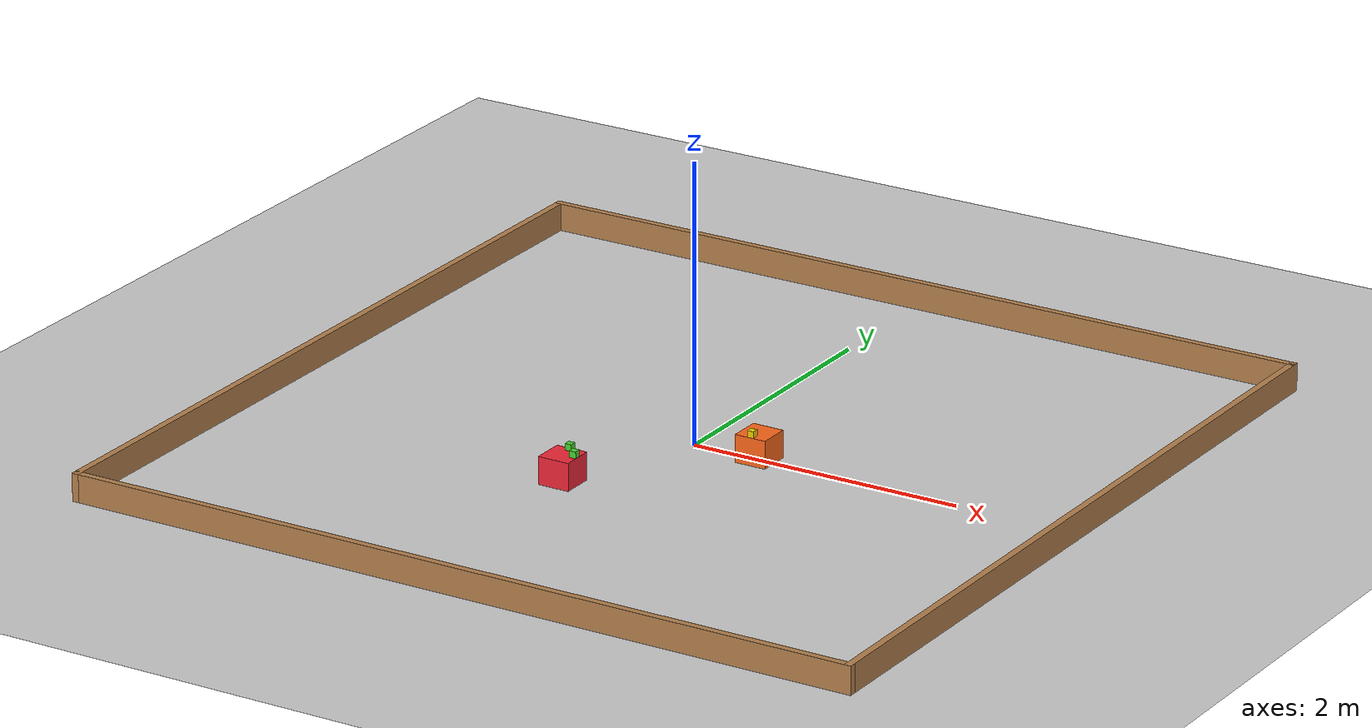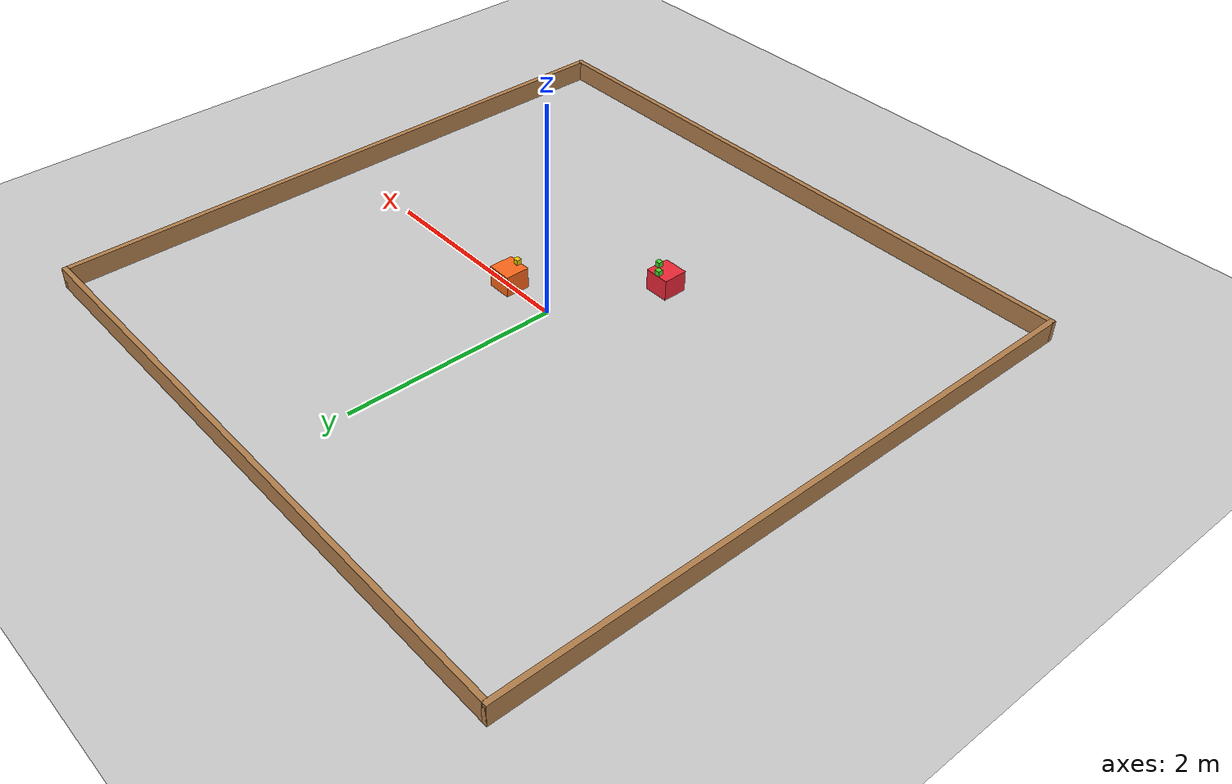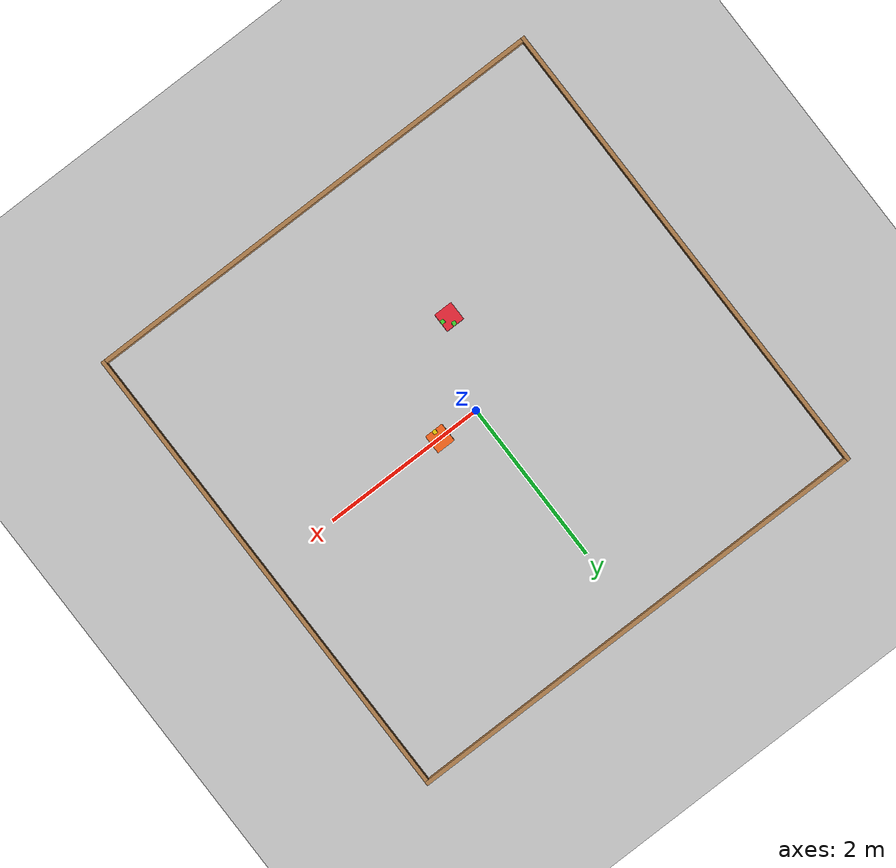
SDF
<sdf version="1.5">
 <world name="default">
  <model name="ground_plane">
   <static>1</static>
   <link name="link">
    <collision name="collision">
     <geometry><plane><normal>0 0 1</normal><size>100 100</size></plane></geometry>
     <surface><friction><ode><mu>100</mu><mu2>50</mu2></ode></friction></surface>
    </collision>
    <visual name="visual">
     <cast_shadows>0</cast_shadows>
     <geometry><plane><normal>0 0 1</normal><size>100 100</size></plane></geometry>
     <material>
      <script><uri>file://media/materials/scripts/gazebo.material</uri><name>Gazebo/Grey</name></script>
     </material>
    </visual>
   </link>
  </model>
  <model name="wroWall"><static>0</static><pose>0.068926 -0.102319 0 0 -0 0</pose></model>
  <model name="red_climate">
   <link name="link_0">
    <inertial>
     <mass>3</mass>
     <inertia>
      <ixx>0.166667</ixx>
      <ixy>0</ixy>
      <ixz>0</ixz>
      <iyy>0.166667</iyy>
      <iyz>0</iyz>
      <izz>0.166667</izz>
     </inertia>
    </inertial>
    <visual name="visual">
     <geometry><box><size>0.23 0.23 0.2</size></box></geometry>
     <material>
      <lighting>1</lighting>
      <script><uri>file://media/materials/scripts/gazebo.material</uri><name>Gazebo/Grey</name></script>
      <ambient>0.933 0.153 0.216 1</ambient>
      <diffuse>0.933 0.153 0.216 1</diffuse>
      <specular>0.933 0.153 0.216 1</specular>
      <emissive>0 0 0 1</emissive>
      <shader type="vertex"><normal_map>__default__</normal_map></shader>
     </material>
    </visual>
    <collision name="collision">
     <geometry><box><size>0.23 0.23 0.2</size></box></geometry>
     <surface>
      <friction>
       <ode><mu>1</mu><mu2>1</mu2><fdir1>0 0 0</fdir1><slip1>0</slip1><slip2>0</slip2></ode>
       <torsional>
        <coefficient>1</coefficient>
        <patch_radius>0</patch_radius>
        <surface_radius>0</surface_radius>
        <use_patch_radius>1</use_patch_radius>
        <ode><slip>0</slip></ode>
       </torsional>
      </friction>
      <bounce><restitution_coefficient>0.3</restitution_coefficient><threshold>1e+06</threshold></bounce>
      <contact>
       <collide_without_contact>0</collide_without_contact>
       <collide_without_contact_bitmask>1</collide_without_contact_bitmask>
       <collide_bitmask>1</collide_bitmask>
       <ode>
        <soft_cfm>0</soft_cfm>
        <soft_erp>0.2</soft_erp>
        <kp>1e+13</kp>
        <kd>1</kd>
        <max_vel>0.01</max_vel>
        <min_depth>0</min_depth>
       </ode>
       <bullet>
        <split_impulse>1</split_impulse>
        <split_impulse_penetration_threshold>-0.01</split_impulse_penetration_threshold>
        <soft_cfm>0</soft_cfm>
        <soft_erp>0.2</soft_erp>
        <kp>1e+13</kp>
        <kd>1</kd>
       </bullet>
      </contact>
     </surface>
    </collision>
   </link>
   <static>0</static>
   <pose>-0.4 -1 0.1 0 -0 4e-06</pose>
  </model>
  <model name="orange_climate">
   <link name="link_0">
    <inertial>
     <mass>3</mass>
     <inertia>
      <ixx>0.166667</ixx>
      <ixy>0</ixy>
      <ixz>0</ixz>
      <iyy>0.166667</iyy>
      <iyz>0</iyz>
      <izz>0.166667</izz>
     </inertia>
    </inertial>
    <visual name="visual">
     <geometry><box><size>0.23 0.23 0.2</size></box></geometry>
     <material>
      <lighting>1</lighting>
      <script><uri>file://media/materials/scripts/gazebo.material</uri><name>Gazebo/Grey</name></script>
      <ambient>0.99 0.4 0.1 1</ambient>
      <diffuse>0.99 0.4 0.1 1</diffuse>
      <specular>0.99 0.4 0.1 1</specular>
      <emissive>0 0 0 1</emissive>
      <shader type="vertex"><normal_map>__default__</normal_map></shader>
     </material>
    </visual>
    <collision name="collision">
     <geometry><box><size>0.23 0.23 0.2</size></box></geometry>
     <surface>
      <friction>
       <ode><mu>1</mu><mu2>1</mu2><fdir1>0 0 0</fdir1><slip1>0</slip1><slip2>0</slip2></ode>
       <torsional>
        <coefficient>1</coefficient>
        <patch_radius>0</patch_radius>
        <surface_radius>0</surface_radius>
        <use_patch_radius>1</use_patch_radius>
        <ode><slip>0</slip></ode>
       </torsional>
      </friction>
      <bounce><restitution_coefficient>0.3</restitution_coefficient><threshold>1e+06</threshold></bounce>
      <contact>
       <collide_without_contact>0</collide_without_contact>
       <collide_without_contact_bitmask>1</collide_without_contact_bitmask>
       <collide_bitmask>1</collide_bitmask>
       <ode>
        <soft_cfm>0</soft_cfm>
        <soft_erp>0.2</soft_erp>
        <kp>1e+13</kp>
        <kd>1</kd>
        <max_vel>0.01</max_vel>
        <min_depth>0</min_depth>
       </ode>
       <bullet>
        <split_impulse>1</split_impulse>
        <split_impulse_penetration_threshold>-0.01</split_impulse_penetration_threshold>
        <soft_cfm>0</soft_cfm>
        <soft_erp>0.2</soft_erp>
        <kp>1e+13</kp>
        <kd>1</kd>
       </bullet>
      </contact>
     </surface>
    </collision>
   </link>
   <static>0</static>
   <pose>0.499997 1e-06 0.1 0 -0 1e-06</pose>
  </model>
  <model name="yellow_plant_2">
   <link name="link_0">
    <inertial>
     <mass>0.03</mass>
     <inertia>
      <ixx>0.166667</ixx>
      <ixy>0</ixy>
      <ixz>0</ixz>
      <iyy>0.166667</iyy>
      <iyz>0</iyz>
      <izz>0.166667</izz>
     </inertia>
    </inertial>
    <visual name="visual">
     <geometry><box><size>0.048 0.048 0.048</size></box></geometry>
     <material>
      <lighting>1</lighting>
      <script><uri>file://media/materials/scripts/gazebo.material</uri><name>Gazebo/Grey</name></script>
      <ambient>0.95 0.8 0 1</ambient>
      <diffuse>0.95 0.8 0 1</diffuse>
      <specular>0.95 0.8 0 1</specular>
      <emissive>0 0 0 1</emissive>
      <shader type="vertex"><normal_map>__default__</normal_map></shader>
     </material>
    </visual>
    <collision name="collision">
     <geometry><box><size>0.048 0.048 0.048</size></box></geometry>
     <surface>
      <friction>
       <ode><mu>1</mu><mu2>1</mu2><fdir1>0 0 0</fdir1><slip1>0</slip1><slip2>0</slip2></ode>
       <torsional>
        <coefficient>1</coefficient>
        <patch_radius>0</patch_radius>
        <surface_radius>0</surface_radius>
        <use_patch_radius>1</use_patch_radius>
        <ode><slip>0</slip></ode>
       </torsional>
      </friction>
      <bounce><restitution_coefficient>0.3</restitution_coefficient><threshold>1e+06</threshold></bounce>
      <contact>
       <collide_without_contact>0</collide_without_contact>
       <collide_without_contact_bitmask>1</collide_without_contact_bitmask>
       <collide_bitmask>1</collide_bitmask>
       <ode>
        <soft_cfm>0</soft_cfm>
        <soft_erp>0.2</soft_erp>
        <kp>1e+13</kp>
        <kd>1</kd>
        <max_vel>0.01</max_vel>
        <min_depth>0</min_depth>
       </ode>
       <bullet>
        <split_impulse>1</split_impulse>
        <split_impulse_penetration_threshold>-0.01</split_impulse_penetration_threshold>
        <soft_cfm>0</soft_cfm>
        <soft_erp>0.2</soft_erp>
        <kp>1e+13</kp>
        <kd>1</kd>
       </bullet>
      </contact>
     </surface>
    </collision>
   </link>
   <static>0</static>
   <pose>0.499936 -0.090742 0.224001 -2e-05 -1.2e-05 -0.001613</pose>
  </model>
  <model name="green_plant_0">
   <link name="link_0">
    <inertial>
     <mass>0.03</mass>
     <inertia>
      <ixx>0.166667</ixx>
      <ixy>0</ixy>
      <ixz>0</ixz>
      <iyy>0.166667</iyy>
      <iyz>0</iyz>
      <izz>0.166667</izz>
     </inertia>
    </inertial>
    <visual name="visual">
     <geometry><box><size>0.048 0.048 0.048</size></box></geometry>
     <material>
      <lighting>1</lighting>
      <script><uri>file://media/materials/scripts/gazebo.material</uri><name>Gazebo/Grey</name></script>
      <ambient>0.266 0.84 0.172 1</ambient>
      <diffuse>0.266 0.84 0.172 1</diffuse>
      <specular>0.266 0.84 0.172 1</specular>
      <emissive>0 0 0 1</emissive>
      <shader type="vertex"><normal_map>__default__</normal_map></shader>
     </material>
    </visual>
    <collision name="collision">
     <geometry><box><size>0.048 0.048 0.048</size></box></geometry>
     <surface>
      <friction>
       <ode><mu>1</mu><mu2>1</mu2><fdir1>0 0 0</fdir1><slip1>0</slip1><slip2>0</slip2></ode>
       <torsional>
        <coefficient>1</coefficient>
        <patch_radius>0</patch_radius>
        <surface_radius>0</surface_radius>
        <use_patch_radius>1</use_patch_radius>
        <ode><slip>0</slip></ode>
       </torsional>
      </friction>
      <bounce><restitution_coefficient>0.3</restitution_coefficient><threshold>1e+06</threshold></bounce>
      <contact>
       <collide_without_contact>0</collide_without_contact>
       <collide_without_contact_bitmask>1</collide_without_contact_bitmask>
       <collide_bitmask>1</collide_bitmask>
       <ode>
        <soft_cfm>0</soft_cfm>
        <soft_erp>0.2</soft_erp>
        <kp>1e+13</kp>
        <kd>1</kd>
        <max_vel>0.01</max_vel>
        <min_depth>0</min_depth>
       </ode>
       <bullet>
        <split_impulse>1</split_impulse>
        <split_impulse_penetration_threshold>-0.01</split_impulse_penetration_threshold>
        <soft_cfm>0</soft_cfm>
        <soft_erp>0.2</soft_erp>
        <kp>1e+13</kp>
        <kd>1</kd>
       </bullet>
      </contact>
     </surface>
    </collision>
   </link>
   <static>0</static>
   <pose>-0.30918 -0.999893 0.224009 -0.000188 -0.000167 -0.000959</pose>
  </model>
  <model name="green_plant_1">
   <link name="link_0">
    <inertial>
     <mass>0.03</mass>
     <inertia>
      <ixx>0.166667</ixx>
      <ixy>0</ixy>
      <ixz>0</ixz>
      <iyy>0.166667</iyy>
      <iyz>0</iyz>
      <izz>0.166667</izz>
     </inertia>
    </inertial>
    <visual name="visual">
     <geometry><box><size>0.048 0.048 0.048</size></box></geometry>
     <material>
      <lighting>1</lighting>
      <script><uri>file://media/materials/scripts/gazebo.material</uri><name>Gazebo/Grey</name></script>
      <ambient>0.266 0.84 0.172 1</ambient>
      <diffuse>0.266 0.84 0.172 1</diffuse>
      <specular>0.266 0.84 0.172 1</specular>
      <emissive>0 0 0 1</emissive>
      <shader type="vertex"><normal_map>__default__</normal_map></shader>
     </material>
    </visual>
    <collision name="collision">
     <geometry><box><size>0.048 0.048 0.048</size></box></geometry>
     <surface>
      <friction>
       <ode><mu>1</mu><mu2>1</mu2><fdir1>0 0 0</fdir1><slip1>0</slip1><slip2>0</slip2></ode>
       <torsional>
        <coefficient>1</coefficient>
        <patch_radius>0</patch_radius>
        <surface_radius>0</surface_radius>
        <use_patch_radius>1</use_patch_radius>
        <ode><slip>0</slip></ode>
       </torsional>
      </friction>
      <bounce><restitution_coefficient>0.3</restitution_coefficient><threshold>1e+06</threshold></bounce>
      <contact>
       <collide_without_contact>0</collide_without_contact>
       <collide_without_contact_bitmask>1</collide_without_contact_bitmask>
       <collide_bitmask>1</collide_bitmask>
       <ode>
        <soft_cfm>0</soft_cfm>
        <soft_erp>0.2</soft_erp>
        <kp>1e+13</kp>
        <kd>1</kd>
        <max_vel>0.01</max_vel>
        <min_depth>0</min_depth>
       </ode>
       <bullet>
        <split_impulse>1</split_impulse>
        <split_impulse_penetration_threshold>-0.01</split_impulse_penetration_threshold>
        <soft_cfm>0</soft_cfm>
        <soft_erp>0.2</soft_erp>
        <kp>1e+13</kp>
        <kd>1</kd>
       </bullet>
      </contact>
     </surface>
    </collision>
   </link>
   <static>0</static>
   <pose>-0.399946 -0.909069 0.224002 -2.8e-05 5.9e-05 0.002071</pose>
  </model>
  <model name="big_wall">
   <link name="Wall_0">
    <collision name="Wall_0_Collision">
     <geometry><box><size>5.9 0.05 0.2</size></box></geometry>
     <pose>0 0 0.1 0 -0 0</pose>
    </collision>
    <visual name="Wall_0_Visual">
     <pose>0 0 0.1 0 -0 0</pose>
     <geometry><box><size>5.9 0.05 0.2</size></box></geometry>
     <material>
      <script><uri>file://media/materials/scripts/gazebo.material</uri><name>Gazebo/Wood</name></script>
      <ambient>1 1 1 1</ambient>
     </material>
    </visual>
    <pose>-2.925 0 0 0 -0 1.5708</pose>
   </link>
   <link name="Wall_1">
    <collision name="Wall_1_Collision">
     <geometry><box><size>5.9 0.05 0.2</size></box></geometry>
     <pose>0 0 0.1 0 -0 0</pose>
    </collision>
    <visual name="Wall_1_Visual">
     <pose>0 0 0.1 0 -0 0</pose>
     <geometry><box><size>5.9 0.05 0.2</size></box></geometry>
     <material>
      <script><uri>file://media/materials/scripts/gazebo.material</uri><name>Gazebo/Wood</name></script>
      <ambient>1 1 1 1</ambient>
     </material>
    </visual>
    <pose>0 2.925 0 0 -0 0</pose>
   </link>
   <link name="Wall_2">
    <collision name="Wall_2_Collision">
     <geometry><box><size>5.9 0.05 0.2</size></box></geometry>
     <pose>0 0 0.1 0 -0 0</pose>
    </collision>
    <visual name="Wall_2_Visual">
     <pose>0 0 0.1 0 -0 0</pose>
     <geometry><box><size>5.9 0.05 0.2</size></box></geometry>
     <material>
      <script><uri>file://media/materials/scripts/gazebo.material</uri><name>Gazebo/Wood</name></script>
      <ambient>1 1 1 1</ambient>
     </material>
    </visual>
    <pose>2.925 0 0 0 0 -1.5708</pose>
   </link>
   <link name="Wall_3">
    <collision name="Wall_3_Collision">
     <geometry><box><size>5.9 0.05 0.2</size></box></geometry>
     <pose>0 0 0.1 0 -0 0</pose>
    </collision>
    <visual name="Wall_3_Visual">
     <pose>0 0 0.1 0 -0 0</pose>
     <geometry><box><size>5.9 0.05 0.2</size></box></geometry>
     <material>
      <script><uri>file://media/materials/scripts/gazebo.material</uri><name>Gazebo/Wood</name></script>
      <ambient>1 1 1 1</ambient>
     </material>
    </visual>
    <pose>0 -2.925 0 0 -0 3.14159</pose>
   </link>
   <static>1</static>
  </model>
 </world>
</sdf>
